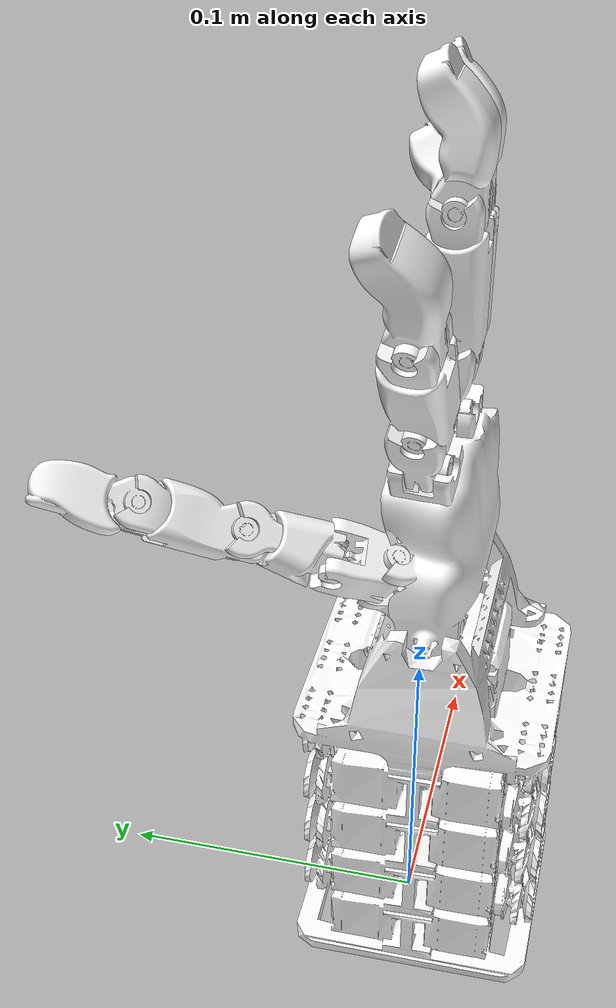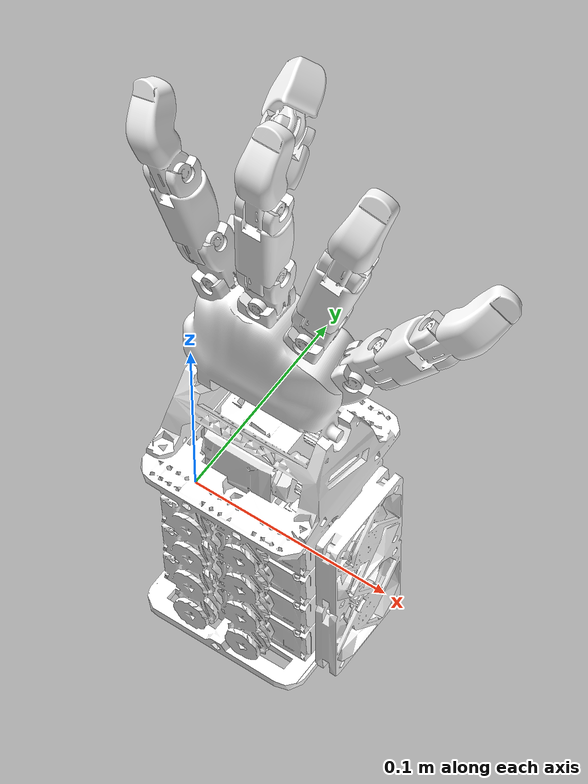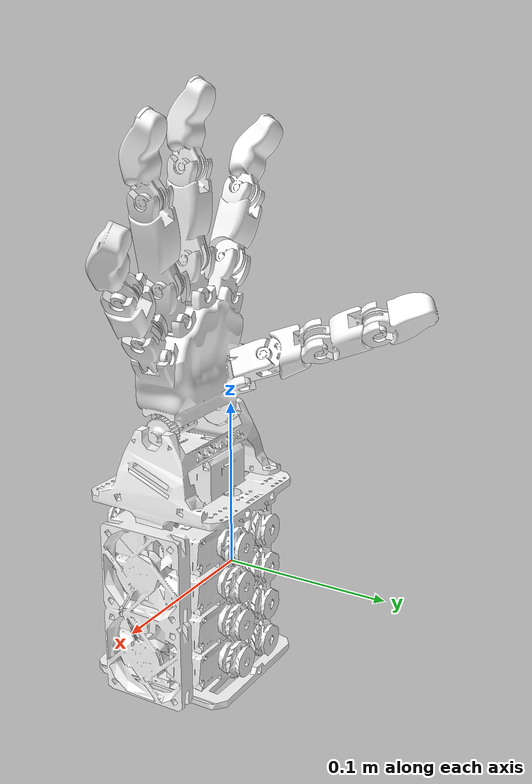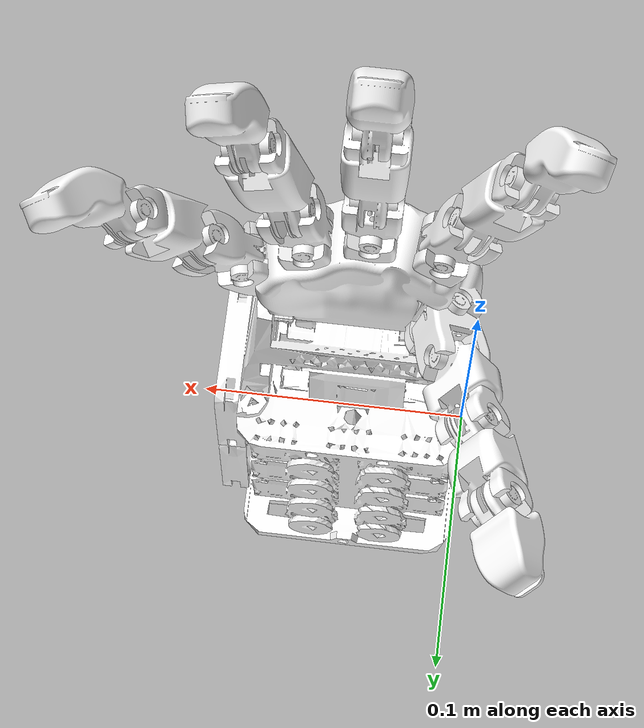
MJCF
<mujoco model="DexterousDynamos">
	<compiler angle="radian"/>
	<default>
		<geom rgba="1 1 1 1" type="mesh" friction="1 0.005 0.001" condim="3" margin="0.0005" contype="1" conaffinity="1"/>
		<joint type="hinge" limited="true" damping="0.1" armature="0.001" margin="0.01" frictionloss="0.001"/>
		<position ctrllimited="true" forcelimited="true" forcerange="-1 1" kp="2.0"/>
		<mesh scale="0.001 0.001 0.001"/>
	</default>
	<asset>
		<mesh name="AP-Assembly" file="assets/AP-Assembly.stl"/>
		<mesh name="MiddleFinger" file="assets/MiddleFinger.stl"/>
		<mesh name="T-AP-Assembly" file="assets/T-AP-Assembly.stl"/>
		<mesh name="CarpalsAssembly" file="assets/CarpalsAssembly.stl"/>
		<mesh name="FingerTipAssembly" file="assets/FingerTipAssembly.stl"/>
		<mesh name="ThumbAssembly" file="assets/ThumbAssembly.stl"/>
		<mesh name="I-PP-Assembly" file="assets/I-PP-Assembly.stl"/>
		<mesh name="M-PP-Assembly" file="assets/M-PP-Assembly.stl"/>
		<mesh name="TowerAssembly" file="assets/TowerAssembly.stl"/>
		<mesh name="IndexFinger" file="assets/IndexFinger.stl"/>
		<mesh name="PinkyFinger" file="assets/PinkyFinger.stl"/>
		<mesh name="ThumbTipAssembly" file="assets/ThumbTipAssembly.stl"/>
		<mesh name="T-TP-Assembly" file="assets/T-TP-Assembly.stl"/>
		<mesh name="P-PP-Assembly" file="assets/P-PP-Assembly.stl"/>
		<mesh name="RingFinger" file="assets/RingFinger.stl"/>
	</asset>
	<worldbody>
		<body name="root" quat="1.0 0.0 0.0 0.0">
			<body name="TowerAssembly_8e26df17" pos="0.0 0.0 0.0" quat="1.0 0.0 0.0 0.0">
				<body name="CarpalsAssembly_a3f178b9" pos="0.03862890845062728 0.0014412498723578074 0.14109038811689056" quat="1.0 -3.0616169978683886e-17 -2.2204460492503136e-16 9.714451465470105e-17">
					<body name="T-TP-Assembly_8f310e51" pos="-0.03118350558327121 0.027675165636026754 -0.007674328988471495" quat="0.30673828436873996 -0.7354124897868741 0.6041400016798182 -0.009744390093888075">
						<body name="T-AP-Assembly_b68d2db9" pos="-0.03000000000000002 -2.42861286636753e-17 -1.8214596497756474e-17" quat="0.573576436351046 0.8191520442889919 0.0 -1.1102230246251565e-16">
							<body name="P-PP-Assembly_4e31112a" pos="4.708523807784693e-17 1.513645907263937e-16 -4.2834101494079344e-17" quat="-4.996003610813204e-16 -0.7071067811865476 7.216449660063518e-16 0.7071067811865474">
								<body name="ThumbTipAssembly_da16f050" pos="0.0004999999999845258 1.960237527853792e-16 0.03299999999999989" quat="0.9999999999999996 -2.220446049250313e-16 -2.0816681711721685e-16 -5.551115123125783e-16">
									<joint name="ThumbTipAssembly_da16f050_joint" pos="-0.13725528249709146 -0.09083064955243778 -0.11281689327909648" axis="-1.3877787807814457e-16 -1.0000000000000018 1.6653345369377348e-16" range="-0.3490658503988659 1.7453292519943295"/>
									<geom mesh="ThumbTipAssembly"/>
								</body>
								<joint name="P-PP-Assembly_4e31112a_joint" pos="-0.12493716415002687 -0.08077510107426261 -0.10269202363708826" axis="-1.27675647831893e-15 -0.9999999999999994 4.996003610813204e-16" range="-0.3490658503988659 2.007128639793479"/>
								<geom mesh="P-PP-Assembly"/>
							</body>
							<joint name="T-AP-Assembly_b68d2db9_joint" pos="0.05637594511670266 -0.011460195463730501 0.0063916678614429154" axis="-1.1102230246251565e-16 0.34202014332566866 0.9396926207859075" range="-0.7853981633974483 0.7853981633974483"/>
							<geom mesh="T-AP-Assembly"/>
						</body>
						<joint name="T-TP-Assembly_8f310e51_joint" pos="0.016999999999975042 6.852157730108388e-17 2.7301511745791984e-14" axis="-2.920774733183862e-12 3.3306690738754696e-16 1.0000000000000002" range="-0.9250245035569946 0.8377580409572782"/>
						<geom mesh="T-TP-Assembly"/>
					</body>
					<body name="AP-Assembly_22c0dde4" pos="-0.03219649781676012 0.0023248750738696024 0.04344008658721097" quat="0.5712969039961256 0.6133821562881893 0.36239418910617205 -0.4074955576859359">
						<body name="I-PP-Assembly_32ddceb4" pos="0.0 0.0 0.0" quat="0.7071067811865477 -5.551115123125783e-17 -0.7071067811865475 0.0">
							<body name="FingerTipAssembly_cc9cd17e" pos="0.0004999999999839647 6.938893903907228e-18 0.03799999999999994" quat="1.0 0.0 2.7755575615628914e-17 5.551115123125783e-17">
								<joint name="FingerTipAssembly_cc9cd17e_joint" pos="-4.506562989359519e-18 5.895358766575946e-17 6.487401240321147e-17" axis="-1.1102230246251565e-15 -0.9999999999999998 -8.326672684688674e-17" range="-0.3490658503988659 2.2689280275926285"/>
								<geom mesh="FingerTipAssembly"/>
							</body>
							<joint name="I-PP-Assembly_32ddceb4_joint" pos="-1.0554991142341346e-17 5.844005384212486e-17 6.500169455539819e-17" axis="-1.1102230246251565e-15 -0.9999999999999998 -8.326672684688674e-17" range="-0.3490658503988659 1.9198621771937625"/>
							<geom mesh="I-PP-Assembly"/>
						</body>
						<joint name="AP-Assembly_22c0dde4_joint" pos="0.020000000000000052 -2.3852447794681098e-18 4.336808689942018e-19" axis="4.163336342344337e-17 9.992007221626409e-16 -1.0000000000000013" range="-0.5235987755982988 0.5235987755982988"/>
						<geom mesh="AP-Assembly"/>
					</body>
					<body name="AP-Assembly_8fe40f7e" pos="0.055183221766068616 0.008313798880845111 0.022423955548036893" quat="0.3673943353744606 0.22390383846930376 0.6525627977313669 -0.6237389425636992">
						<body name="P-PP-Assembly_c1041f9e" pos="8.45178423300355e-18 -1.0204819466498632e-17 -4.475629889943052e-18" quat="0.7071067811865476 -1.1102230246251565e-16 -0.7071067811865474 1.6653345369377348e-16">
							<body name="FingerTipAssembly_28a83376" pos="0.0004999999999844955 3.469446951953614e-17 0.03299999999999998" quat="1.0 -5.551115123125783e-17 0.0 -5.551115123125783e-17">
								<joint name="FingerTipAssembly_28a83376_joint" pos="-4.630531374131085e-18 -3.7088372491485756e-17 -3.145406773126967e-17" axis="-2.7755575615628914e-16 -1.0000000000000007 -2.498001805406602e-16" range="-0.3490658503988659 2.2689280275926285"/>
								<geom mesh="FingerTipAssembly"/>
							</body>
							<joint name="P-PP-Assembly_c1041f9e_joint" pos="3.4409772224679328e-18 3.9175276362032155e-17 1.0647123163719203e-16" axis="-1.6653345369377348e-16 -1.0000000000000004 -2.220446049250313e-16" range="-0.3490658503988659 1.9198621771937625"/>
							<geom mesh="P-PP-Assembly"/>
						</body>
						<joint name="AP-Assembly_8fe40f7e_joint" pos="0.020000000000000014 2.42861286636753e-17 6.071532165918825e-18" axis="1.942890293094024e-16 -5.551115123125783e-16 -0.9999999999999997" range="-0.5235987755982988 0.5235987755982988"/>
						<geom mesh="AP-Assembly"/>
					</body>
					<body name="AP-Assembly_0c2e1cd6" pos="-7.819110489514213e-34 -8.04894699130166e-18 0.04999999999999999" quat="0.5 0.5000000000000001 0.49999999999999994 -0.5000000000000001">
						<body name="M-PP-Assembly_8bc6ddb7" pos="0.0 0.0 0.0" quat="0.7071067811865476 0.0 -0.7071067811865475 0.0">
							<body name="FingerTipAssembly_a13adc36" pos="0.0004999999999727618 -3.469446951953614e-18 0.04600000000000007" quat="1.0 0.0 0.0 0.0">
								<joint name="FingerTipAssembly_a13adc36_joint" pos="5.421010862428354e-19 1.0168910106364605e-31 8.326672684688675e-17" axis="1.1102230246251565e-16 -1.0000000000000004 -2.7755575615628914e-17" range="-0.3490658503988659 2.2689280275926285"/>
								<geom mesh="FingerTipAssembly"/>
							</body>
							<joint name="M-PP-Assembly_8bc6ddb7_joint" pos="8.011868568650901e-32 1.0477058897466563e-31 8.326672684688675e-17" axis="1.1102230246251565e-16 -1.0000000000000004 -2.7755575615628914e-17" range="-0.3490658503988659 1.9198621771937625"/>
							<geom mesh="M-PP-Assembly"/>
						</body>
						<joint name="AP-Assembly_0c2e1cd6_joint" pos="0.019999999999999987 3.771356811665857e-18 -1.701695755040975e-18" axis="-9.645057161491277e-31 -1.6653345369377348e-16 -0.9999999999999998" range="-0.5235987755982988 0.5235987755982988"/>
						<geom mesh="AP-Assembly"/>
					</body>
					<body name="AP-Assembly_a3d92f10" pos="0.02668522427376689 0.0019917457033393317 0.04013715734793663" quat="0.4471963219974949 0.4132691663178327 0.5698177506584137 -0.5518439786728336">
						<body name="M-PP-Assembly_c004e538" pos="0.0 0.0 0.0" quat="0.7071067811865477 0.0 -0.7071067811865476 0.0">
							<body name="FingerTipAssembly_bc7e70d7" pos="0.0004999999999727601 1.5612511283791264e-17 0.04600000000000003" quat="1.0 2.7755575615628914e-17 0.0 5.551115123125783e-17">
								<joint name="FingerTipAssembly_bc7e70d7_joint" pos="-6.5371804131346096e-18 -1.5935858178068978e-17 1.6822041242320552e-16" axis="0.0 -0.9999999999999998 -5.551115123125783e-17" range="-0.3490658503988659 2.2689280275926285"/>
								<geom mesh="FingerTipAssembly"/>
							</body>
							<joint name="M-PP-Assembly_c004e538_joint" pos="-6.247486316026924e-19 2.7821222532288604e-17 -5.000422469950927e-17" axis="0.0 -0.9999999999999998 -5.551115123125783e-17" range="-0.3490658503988659 1.9198621771937625"/>
							<geom mesh="M-PP-Assembly"/>
						</body>
						<joint name="AP-Assembly_a3d92f10_joint" pos="0.020000000000000052 -4.640385298237959e-17 5.421010862427522e-18" axis="2.0816681711721685e-16 -1.1102230246251565e-16 -0.9999999999999998" range="-0.5235987755982988 0.5235987755982988"/>
						<geom mesh="AP-Assembly"/>
					</body>
					<joint name="CarpalsAssembly_a3f178b9_joint" pos="0.002000000000000012 -0.0014412498723578018 -0.03871931353519552" axis="-1.0000000000000009 -1.4791141972893971e-31 -1.0947644252537633e-46" range="-1.0471975511965976 1.0471975511965976"/>
					<geom mesh="CarpalsAssembly"/>
				</body>
				<geom mesh="TowerAssembly"/>
			</body>
		</body>
	</worldbody>
	<actuator>
		<position name="CarpalsAssembly_a3f178b9_joint_actuator" joint="CarpalsAssembly_a3f178b9_joint" ctrlrange="-1.0471975511965976 1.0471975511965976"/>
		<position name="AP-Assembly_a3d92f10_joint_actuator" joint="AP-Assembly_a3d92f10_joint" ctrlrange="-0.5235987755982988 0.5235987755982988"/>
		<position name="M-PP-Assembly_c004e538_joint_actuator" joint="M-PP-Assembly_c004e538_joint" ctrlrange="-0.3490658503988659 1.9198621771937625"/>
		<position name="FingerTipAssembly_bc7e70d7_joint_actuator" joint="FingerTipAssembly_bc7e70d7_joint" ctrlrange="-0.3490658503988659 2.2689280275926285"/>
		<position name="AP-Assembly_0c2e1cd6_joint_actuator" joint="AP-Assembly_0c2e1cd6_joint" ctrlrange="-0.5235987755982988 0.5235987755982988"/>
		<position name="M-PP-Assembly_8bc6ddb7_joint_actuator" joint="M-PP-Assembly_8bc6ddb7_joint" ctrlrange="-0.3490658503988659 1.9198621771937625"/>
		<position name="FingerTipAssembly_a13adc36_joint_actuator" joint="FingerTipAssembly_a13adc36_joint" ctrlrange="-0.3490658503988659 2.2689280275926285"/>
		<position name="AP-Assembly_8fe40f7e_joint_actuator" joint="AP-Assembly_8fe40f7e_joint" ctrlrange="-0.5235987755982988 0.5235987755982988"/>
		<position name="P-PP-Assembly_c1041f9e_joint_actuator" joint="P-PP-Assembly_c1041f9e_joint" ctrlrange="-0.3490658503988659 1.9198621771937625"/>
		<position name="FingerTipAssembly_28a83376_joint_actuator" joint="FingerTipAssembly_28a83376_joint" ctrlrange="-0.3490658503988659 2.2689280275926285"/>
		<position name="AP-Assembly_22c0dde4_joint_actuator" joint="AP-Assembly_22c0dde4_joint" ctrlrange="-0.5235987755982988 0.5235987755982988"/>
		<position name="I-PP-Assembly_32ddceb4_joint_actuator" joint="I-PP-Assembly_32ddceb4_joint" ctrlrange="-0.3490658503988659 1.9198621771937625"/>
		<position name="FingerTipAssembly_cc9cd17e_joint_actuator" joint="FingerTipAssembly_cc9cd17e_joint" ctrlrange="-0.3490658503988659 2.2689280275926285"/>
		<position name="T-TP-Assembly_8f310e51_joint_actuator" joint="T-TP-Assembly_8f310e51_joint" ctrlrange="-0.9250245035569946 0.8377580409572782"/>
		<position name="T-AP-Assembly_b68d2db9_joint_actuator" joint="T-AP-Assembly_b68d2db9_joint" ctrlrange="-0.7853981633974483 0.7853981633974483"/>
		<position name="P-PP-Assembly_4e31112a_joint_actuator" joint="P-PP-Assembly_4e31112a_joint" ctrlrange="-0.3490658503988659 2.007128639793479"/>
		<position name="ThumbTipAssembly_da16f050_joint_actuator" joint="ThumbTipAssembly_da16f050_joint" ctrlrange="-0.3490658503988659 1.7453292519943295"/>
	</actuator>
	<contact>
		<exclude body1="root" body2="TowerAssembly_8e26df17"/>
		<exclude body1="TowerAssembly_8e26df17" body2="CarpalsAssembly_a3f178b9"/>
		<exclude body1="CarpalsAssembly_a3f178b9" body2="AP-Assembly_a3d92f10"/>
		<exclude body1="AP-Assembly_a3d92f10" body2="M-PP-Assembly_c004e538"/>
		<exclude body1="M-PP-Assembly_c004e538" body2="FingerTipAssembly_bc7e70d7"/>
		<exclude body1="CarpalsAssembly_a3f178b9" body2="AP-Assembly_0c2e1cd6"/>
		<exclude body1="AP-Assembly_0c2e1cd6" body2="M-PP-Assembly_8bc6ddb7"/>
		<exclude body1="M-PP-Assembly_8bc6ddb7" body2="FingerTipAssembly_a13adc36"/>
		<exclude body1="CarpalsAssembly_a3f178b9" body2="AP-Assembly_8fe40f7e"/>
		<exclude body1="AP-Assembly_8fe40f7e" body2="P-PP-Assembly_c1041f9e"/>
		<exclude body1="P-PP-Assembly_c1041f9e" body2="FingerTipAssembly_28a83376"/>
		<exclude body1="CarpalsAssembly_a3f178b9" body2="AP-Assembly_22c0dde4"/>
		<exclude body1="AP-Assembly_22c0dde4" body2="I-PP-Assembly_32ddceb4"/>
		<exclude body1="I-PP-Assembly_32ddceb4" body2="FingerTipAssembly_cc9cd17e"/>
		<exclude body1="CarpalsAssembly_a3f178b9" body2="T-TP-Assembly_8f310e51"/>
		<exclude body1="T-TP-Assembly_8f310e51" body2="T-AP-Assembly_b68d2db9"/>
		<exclude body1="T-AP-Assembly_b68d2db9" body2="P-PP-Assembly_4e31112a"/>
		<exclude body1="P-PP-Assembly_4e31112a" body2="ThumbTipAssembly_da16f050"/>
	</contact>
	<equality>
	</equality>
</mujoco>
